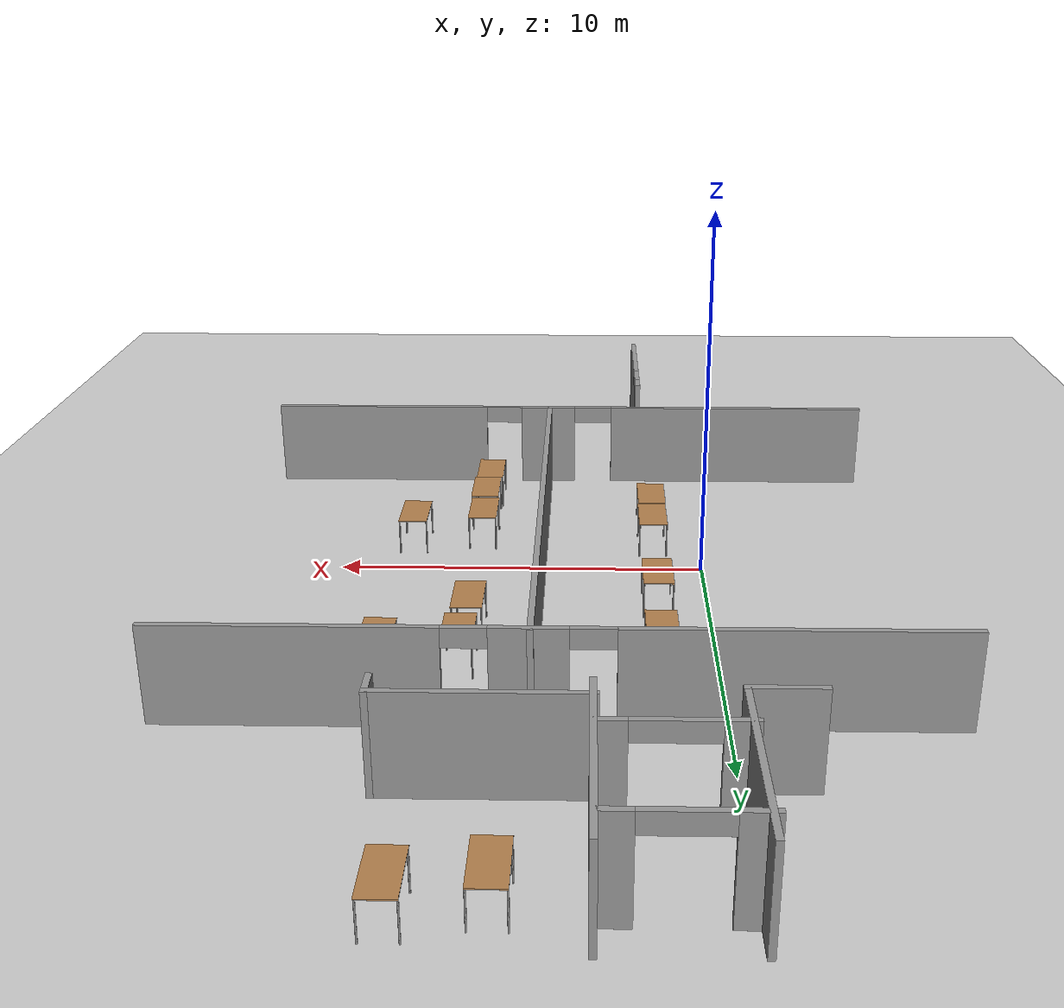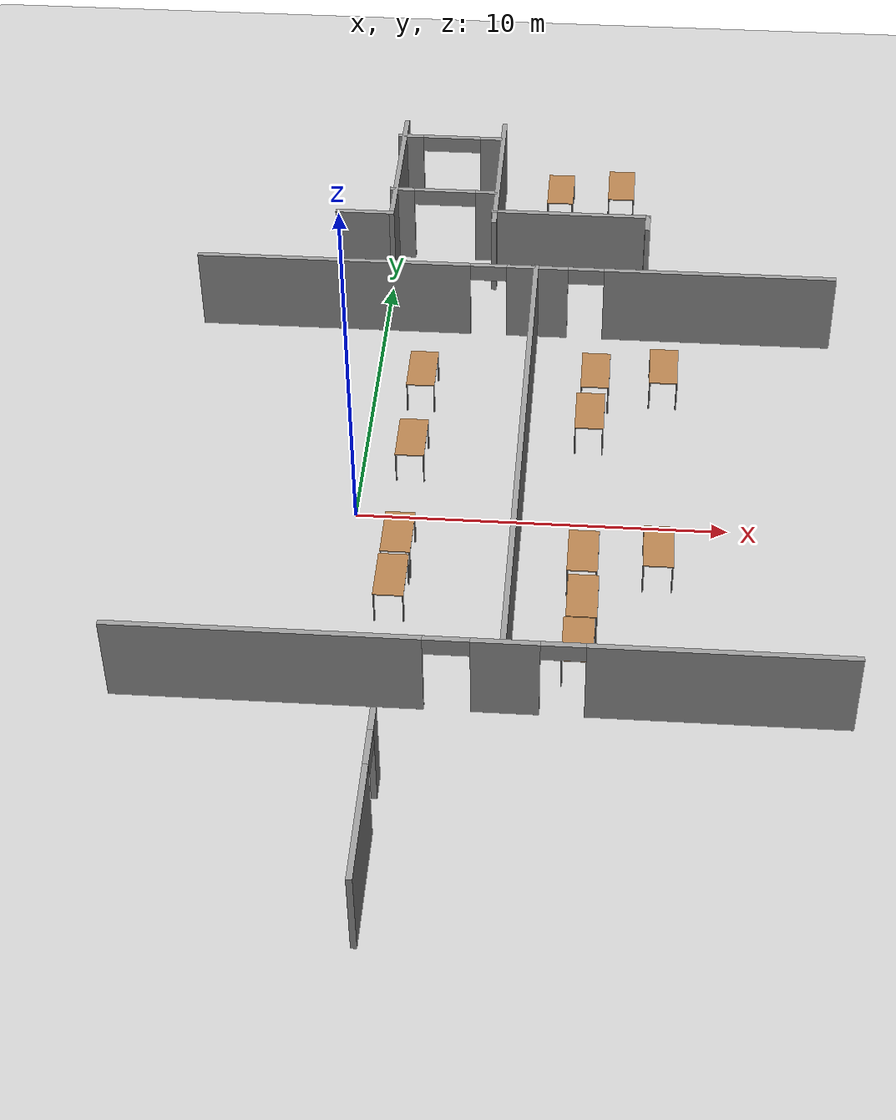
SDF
<sdf version="1.4">
 <world name="default">
  <model name="ground_plane">
   <static>1</static>
   <link name="link">
    <collision name="collision">
     <geometry><plane><normal>0 0 1</normal><size>100 100</size></plane></geometry>
    </collision>
    <visual name="visual">
     <cast_shadows>0</cast_shadows>
     <geometry><plane><normal>0 0 1</normal><size>100 100</size></plane></geometry>
     <material>
      <script><uri>file://media/materials/scripts/gazebo.material</uri><name>Gazebo/Grey</name></script>
     </material>
    </visual>
    <velocity_decay><linear>0</linear><angular>0</angular></velocity_decay>
   </link>
  </model>
  <model name="Shannon">
   <pose>-0.0406 0.68299 0 0 -0 0</pose>
   <link name="Wall_122">
    <pose>1.42965 13.9029 0 0 -0 0</pose>
    <visual name="Wall_122_Visual_0">
     <pose>-1.23095 0 1.25 0 -0 0</pose>
     <geometry><box><size>0.788098 0.15 2.5</size></box></geometry>
     <material>
      <script><uri>file://media/materials/scripts/gazebo.material</uri><name>Gazebo/Grey</name></script>
      <ambient>1 1 1 1</ambient>
     </material>
    </visual>
    <collision name="Wall_122_Collision_0">
     <geometry><box><size>0.788098 0.15 2.5</size></box></geometry>
     <pose>-1.23095 0 1.25 0 -0 0</pose>
    </collision>
    <visual name="Wall_122_Visual_1">
     <pose>1.28137 0 1.25 0 -0 0</pose>
     <geometry><box><size>0.687253 0.15 2.5</size></box></geometry>
     <material>
      <script><uri>file://media/materials/scripts/gazebo.material</uri><name>Gazebo/Grey</name></script>
      <ambient>1 1 1 1</ambient>
     </material>
    </visual>
    <collision name="Wall_122_Collision_1">
     <geometry><box><size>0.687253 0.15 2.5</size></box></geometry>
     <pose>1.28137 0 1.25 0 -0 0</pose>
    </collision>
    <visual name="Wall_122_Visual_2">
     <pose>0.050423 0 2.25 0 -0 0</pose>
     <geometry><box><size>1.77465 0.15 0.5</size></box></geometry>
     <material>
      <script><uri>file://media/materials/scripts/gazebo.material</uri><name>Gazebo/Grey</name></script>
      <ambient>1 1 1 1</ambient>
     </material>
    </visual>
    <collision name="Wall_122_Collision_2">
     <geometry><box><size>1.77465 0.15 0.5</size></box></geometry>
     <pose>0.050423 0 2.25 0 -0 0</pose>
    </collision>
    <velocity_decay><linear>0</linear><angular>0</angular></velocity_decay>
   </link>
   <link name="Wall_34">
    <pose>3.83527 7.41126 0 0 -0 0</pose>
    <visual name="Wall_34_Visual_0">
     <pose>-5.27347 0 1.25 0 -0 0</pose>
     <geometry><box><size>7.95306 0.15 2.5</size></box></geometry>
     <material>
      <script><uri>file://media/materials/scripts/gazebo.material</uri><name>Gazebo/Grey</name></script>
      <ambient>1 1 1 1</ambient>
     </material>
    </visual>
    <collision name="Wall_34_Collision_0">
     <geometry><box><size>7.95306 0.15 2.5</size></box></geometry>
     <pose>-5.27347 0 1.25 0 -0 0</pose>
    </collision>
    <visual name="Wall_34_Visual_1">
     <pose>0.653062 0 1.25 0 -0 0</pose>
     <geometry><box><size>1.78 0.15 2.5</size></box></geometry>
     <material>
      <script><uri>file://media/materials/scripts/gazebo.material</uri><name>Gazebo/Grey</name></script>
      <ambient>1 1 1 1</ambient>
     </material>
    </visual>
    <collision name="Wall_34_Collision_1">
     <geometry><box><size>1.78 0.15 2.5</size></box></geometry>
     <pose>0.653062 0 1.25 0 -0 0</pose>
    </collision>
    <visual name="Wall_34_Visual_2">
     <pose>5.91653 0 1.25 0 -0 0</pose>
     <geometry><box><size>6.66694 0.15 2.5</size></box></geometry>
     <material>
      <script><uri>file://media/materials/scripts/gazebo.material</uri><name>Gazebo/Grey</name></script>
      <ambient>1 1 1 1</ambient>
     </material>
    </visual>
    <collision name="Wall_34_Collision_2">
     <geometry><box><size>6.66694 0.15 2.5</size></box></geometry>
     <pose>5.91653 0 1.25 0 -0 0</pose>
    </collision>
    <visual name="Wall_34_Visual_3">
     <pose>-0.766938 0 2.25 0 -0 0</pose>
     <geometry><box><size>1.06 0.15 0.5</size></box></geometry>
     <material>
      <script><uri>file://media/materials/scripts/gazebo.material</uri><name>Gazebo/Grey</name></script>
      <ambient>1 1 1 1</ambient>
     </material>
    </visual>
    <collision name="Wall_34_Collision_3">
     <geometry><box><size>1.06 0.15 0.5</size></box></geometry>
     <pose>-0.766938 0 2.25 0 -0 0</pose>
    </collision>
    <visual name="Wall_34_Visual_4">
     <pose>2.06306 0 2.25 0 -0 0</pose>
     <geometry><box><size>1.04 0.15 0.5</size></box></geometry>
     <material>
      <script><uri>file://media/materials/scripts/gazebo.material</uri><name>Gazebo/Grey</name></script>
      <ambient>1 1 1 1</ambient>
     </material>
    </visual>
    <collision name="Wall_34_Collision_4">
     <geometry><box><size>1.04 0.15 0.5</size></box></geometry>
     <pose>2.06306 0 2.25 0 -0 0</pose>
    </collision>
    <velocity_decay><linear>0</linear><angular>0</angular></velocity_decay>
   </link>
   <link name="Wall_36">
    <pose>3.83527 -7.43874 0 0 -0 3.14159</pose>
    <visual name="Wall_36_Visual_0">
     <pose>-5.93674 0 1.25 0 -0 0</pose>
     <geometry><box><size>6.62653 0.15 2.5</size></box></geometry>
     <material>
      <script><uri>file://media/materials/scripts/gazebo.material</uri><name>Gazebo/Grey</name></script>
      <ambient>1 1 1 1</ambient>
     </material>
    </visual>
    <collision name="Wall_36_Collision_0">
     <geometry><box><size>6.62653 0.15 2.5</size></box></geometry>
     <pose>-5.93674 0 1.25 0 -0 0</pose>
    </collision>
    <visual name="Wall_36_Visual_1">
     <pose>-0.66258 0 1.25 0 -0 0</pose>
     <geometry><box><size>1.69618 0.15 2.5</size></box></geometry>
     <material>
      <script><uri>file://media/materials/scripts/gazebo.material</uri><name>Gazebo/Grey</name></script>
      <ambient>1 1 1 1</ambient>
     </material>
    </visual>
    <collision name="Wall_36_Collision_1">
     <geometry><box><size>1.69618 0.15 2.5</size></box></geometry>
     <pose>-0.66258 0 1.25 0 -0 0</pose>
    </collision>
    <visual name="Wall_36_Visual_2">
     <pose>5.30076 0 1.25 0 -0 0</pose>
     <geometry><box><size>7.89849 0.15 2.5</size></box></geometry>
     <material>
      <script><uri>file://media/materials/scripts/gazebo.material</uri><name>Gazebo/Grey</name></script>
      <ambient>1 1 1 1</ambient>
     </material>
    </visual>
    <collision name="Wall_36_Collision_2">
     <geometry><box><size>7.89849 0.15 2.5</size></box></geometry>
     <pose>5.30076 0 1.25 0 -0 0</pose>
    </collision>
    <visual name="Wall_36_Visual_3">
     <pose>-2.06707 0 2.25 0 -0 0</pose>
     <geometry><box><size>1.1128 0.15 0.5</size></box></geometry>
     <material>
      <script><uri>file://media/materials/scripts/gazebo.material</uri><name>Gazebo/Grey</name></script>
      <ambient>1 1 1 1</ambient>
     </material>
    </visual>
    <collision name="Wall_36_Collision_3">
     <geometry><box><size>1.1128 0.15 0.5</size></box></geometry>
     <pose>-2.06707 0 2.25 0 -0 0</pose>
    </collision>
    <visual name="Wall_36_Visual_4">
     <pose>0.76851 0 2.25 0 -0 0</pose>
     <geometry><box><size>1.166 0.15 0.5</size></box></geometry>
     <material>
      <script><uri>file://media/materials/scripts/gazebo.material</uri><name>Gazebo/Grey</name></script>
      <ambient>1 1 1 1</ambient>
     </material>
    </visual>
    <collision name="Wall_36_Collision_4">
     <geometry><box><size>1.166 0.15 0.5</size></box></geometry>
     <pose>0.76851 0 2.25 0 -0 0</pose>
    </collision>
    <velocity_decay><linear>0</linear><angular>0</angular></velocity_decay>
   </link>
   <link name="Wall_39">
    <collision name="Wall_39_Collision">
     <geometry><box><size>15 0.15 2.5</size></box></geometry>
     <pose>0 0 1.25 0 -0 0</pose>
    </collision>
    <visual name="Wall_39_Visual">
     <pose>0 0 1.25 0 -0 0</pose>
     <geometry><box><size>15 0.15 2.5</size></box></geometry>
     <material>
      <script><uri>file://media/materials/scripts/gazebo.material</uri><name>Gazebo/Grey</name></script>
      <ambient>1 1 1 1</ambient>
     </material>
    </visual>
    <pose>4.44451 0.03252 0 0 -0 -1.5708</pose>
    <velocity_decay><linear>0</linear><angular>0</angular></velocity_decay>
   </link>
   <link name="Wall_78">
    <collision name="Wall_78_Collision">
     <geometry><box><size>1.75 0.15 2.5</size></box></geometry>
     <pose>0 0 1.25 0 -0 0</pose>
    </collision>
    <visual name="Wall_78_Visual">
     <pose>0 0 1.25 0 -0 0</pose>
     <geometry><box><size>1.75 0.15 2.5</size></box></geometry>
     <material>
      <script><uri>file://media/materials/scripts/gazebo.material</uri><name>Gazebo/Grey</name></script>
      <ambient>1 1 1 1</ambient>
     </material>
    </visual>
    <pose>-0.792577 9.81684 0 0 -0 0</pose>
    <velocity_decay><linear>0</linear><angular>0</angular></velocity_decay>
   </link>
   <link name="Wall_80">
    <collision name="Wall_80_Collision">
     <geometry><box><size>5 0.15 2.5</size></box></geometry>
     <pose>0 0 1.25 0 -0 0</pose>
    </collision>
    <visual name="Wall_80_Visual">
     <pose>0 0 1.25 0 -0 0</pose>
     <geometry><box><size>5 0.15 2.5</size></box></geometry>
     <material>
      <script><uri>file://media/materials/scripts/gazebo.material</uri><name>Gazebo/Grey</name></script>
      <ambient>1 1 1 1</ambient>
     </material>
    </visual>
    <pose>0.007423 12.2418 0 0 -0 1.5708</pose>
    <velocity_decay><linear>0</linear><angular>0</angular></velocity_decay>
   </link>
   <link name="Wall_82">
    <pose>1.46091 11.0428 0 0 -0 0</pose>
    <visual name="Wall_82_Visual_0">
     <pose>-1.25629 0 1.25 0 -0 0</pose>
     <geometry><box><size>0.737414 0.15 2.5</size></box></geometry>
     <material>
      <script><uri>file://media/materials/scripts/gazebo.material</uri><name>Gazebo/Grey</name></script>
      <ambient>1 1 1 1</ambient>
     </material>
    </visual>
    <collision name="Wall_82_Collision_0">
     <geometry><box><size>0.737414 0.15 2.5</size></box></geometry>
     <pose>-1.25629 0 1.25 0 -0 0</pose>
    </collision>
    <visual name="Wall_82_Visual_1">
     <pose>1.28871 0 1.25 0 -0 0</pose>
     <geometry><box><size>0.672586 0.15 2.5</size></box></geometry>
     <material>
      <script><uri>file://media/materials/scripts/gazebo.material</uri><name>Gazebo/Grey</name></script>
      <ambient>1 1 1 1</ambient>
     </material>
    </visual>
    <collision name="Wall_82_Collision_1">
     <geometry><box><size>0.672586 0.15 2.5</size></box></geometry>
     <pose>1.28871 0 1.25 0 -0 0</pose>
    </collision>
    <visual name="Wall_82_Visual_2">
     <pose>0.032414 0 2.25 0 -0 0</pose>
     <geometry><box><size>1.84 0.15 0.5</size></box></geometry>
     <material>
      <script><uri>file://media/materials/scripts/gazebo.material</uri><name>Gazebo/Grey</name></script>
      <ambient>1 1 1 1</ambient>
     </material>
    </visual>
    <collision name="Wall_82_Collision_2">
     <geometry><box><size>1.84 0.15 0.5</size></box></geometry>
     <pose>0.032414 0 2.25 0 -0 0</pose>
    </collision>
    <velocity_decay><linear>0</linear><angular>0</angular></velocity_decay>
   </link>
   <link name="Wall_84">
    <collision name="Wall_84_Collision">
     <geometry><box><size>5.25 0.15 2.5</size></box></geometry>
     <pose>0 0 1.25 0 -0 0</pose>
    </collision>
    <visual name="Wall_84_Visual">
     <pose>0 0 1.25 0 -0 0</pose>
     <geometry><box><size>5.25 0.15 2.5</size></box></geometry>
     <material>
      <script><uri>file://media/materials/scripts/gazebo.material</uri><name>Gazebo/Grey</name></script>
      <ambient>1 1 1 1</ambient>
     </material>
    </visual>
    <pose>3.07981 12.1243 0 0 -0 -1.5708</pose>
    <velocity_decay><linear>0</linear><angular>0</angular></velocity_decay>
   </link>
   <link name="Wall_86">
    <collision name="Wall_86_Collision">
     <geometry><box><size>4.75 0.15 2.5</size></box></geometry>
     <pose>0 0 1.25 0 -0 0</pose>
    </collision>
    <visual name="Wall_86_Visual">
     <pose>0 0 1.25 0 -0 0</pose>
     <geometry><box><size>4.75 0.15 2.5</size></box></geometry>
     <material>
      <script><uri>file://media/materials/scripts/gazebo.material</uri><name>Gazebo/Grey</name></script>
      <ambient>1 1 1 1</ambient>
     </material>
    </visual>
    <pose>5.33354 10.0944 0 0 -0 0</pose>
    <velocity_decay><linear>0</linear><angular>0</angular></velocity_decay>
   </link>
   <link name="Wall_87">
    <collision name="Wall_87_Collision">
     <geometry><box><size>0.75 0.15 2.5</size></box></geometry>
     <pose>0 0 1.25 0 -0 0</pose>
    </collision>
    <visual name="Wall_87_Visual">
     <pose>0 0 1.25 0 -0 0</pose>
     <geometry><box><size>0.75 0.15 2.5</size></box></geometry>
     <material>
      <script><uri>file://media/materials/scripts/gazebo.material</uri><name>Gazebo/Grey</name></script>
      <ambient>1 1 1 1</ambient>
     </material>
    </visual>
    <pose>7.63354 9.79441 0 0 -0 -1.5708</pose>
    <velocity_decay><linear>0</linear><angular>0</angular></velocity_decay>
   </link>
   <link name="Wall_99">
    <pose>1.56463 -12.2176 0 0 -0 -1.5708</pose>
    <visual name="Wall_99_Visual_0">
     <pose>-2.15139 0 1.25 0 -0 0</pose>
     <geometry><box><size>0.697217 0.15 2.5</size></box></geometry>
     <material>
      <script><uri>file://media/materials/scripts/gazebo.material</uri><name>Gazebo/Grey</name></script>
      <ambient>1 1 1 1</ambient>
     </material>
    </visual>
    <collision name="Wall_99_Collision_0">
     <geometry><box><size>0.697217 0.15 2.5</size></box></geometry>
     <pose>-2.15139 0 1.25 0 -0 0</pose>
    </collision>
    <visual name="Wall_99_Visual_1">
     <pose>0.867048 0 1.25 0 -0 0</pose>
     <geometry><box><size>3.2659 0.15 2.5</size></box></geometry>
     <material>
      <script><uri>file://media/materials/scripts/gazebo.material</uri><name>Gazebo/Grey</name></script>
      <ambient>1 1 1 1</ambient>
     </material>
    </visual>
    <collision name="Wall_99_Collision_1">
     <geometry><box><size>3.2659 0.15 2.5</size></box></geometry>
     <pose>0.867048 0 1.25 0 -0 0</pose>
    </collision>
    <visual name="Wall_99_Visual_2">
     <pose>-1.28434 0 2.25 0 -0 0</pose>
     <geometry><box><size>1.03688 0.15 0.5</size></box></geometry>
     <material>
      <script><uri>file://media/materials/scripts/gazebo.material</uri><name>Gazebo/Grey</name></script>
      <ambient>1 1 1 1</ambient>
     </material>
    </visual>
    <collision name="Wall_99_Collision_2">
     <geometry><box><size>1.03688 0.15 0.5</size></box></geometry>
     <pose>-1.28434 0 2.25 0 -0 0</pose>
    </collision>
    <velocity_decay><linear>0</linear><angular>0</angular></velocity_decay>
   </link>
   <static>1</static>
  </model>
  <model name="table">
   <static>1</static>
   <link name="link">
    <collision name="surface">
     <pose>0 0 1 0 -0 0</pose>
     <geometry><box><size>1.5 0.8 0.03</size></box></geometry>
    </collision>
    <visual name="visual1">
     <pose>0 0 1 0 -0 0</pose>
     <geometry><box><size>1.5 0.8 0.03</size></box></geometry>
     <material>
      <script><uri>file://media/materials/scripts/gazebo.material</uri><name>Gazebo/Wood</name></script>
     </material>
    </visual>
    <collision name="front_left_leg">
     <pose>0.68 0.38 0.5 0 -0 0</pose>
     <geometry><cylinder><radius>0.02</radius><length>1</length></cylinder></geometry>
    </collision>
    <visual name="front_left_leg">
     <pose>0.68 0.38 0.5 0 -0 0</pose>
     <geometry><cylinder><radius>0.02</radius><length>1</length></cylinder></geometry>
     <material>
      <script><uri>file://media/materials/scripts/gazebo.material</uri><name>Gazebo/Grey</name></script>
     </material>
    </visual>
    <collision name="front_right_leg">
     <pose>0.68 -0.38 0.5 0 -0 0</pose>
     <geometry><cylinder><radius>0.02</radius><length>1</length></cylinder></geometry>
    </collision>
    <visual name="front_right_leg">
     <pose>0.68 -0.38 0.5 0 -0 0</pose>
     <geometry><cylinder><radius>0.02</radius><length>1</length></cylinder></geometry>
     <material>
      <script><uri>file://media/materials/scripts/gazebo.material</uri><name>Gazebo/Grey</name></script>
     </material>
    </visual>
    <collision name="back_right_leg">
     <pose>-0.68 -0.38 0.5 0 -0 0</pose>
     <geometry><cylinder><radius>0.02</radius><length>1</length></cylinder></geometry>
    </collision>
    <visual name="back_right_leg">
     <pose>-0.68 -0.38 0.5 0 -0 0</pose>
     <geometry><cylinder><radius>0.02</radius><length>1</length></cylinder></geometry>
     <material>
      <script><uri>file://media/materials/scripts/gazebo.material</uri><name>Gazebo/Grey</name></script>
     </material>
    </visual>
    <collision name="back_left_leg">
     <pose>-0.68 0.38 0.5 0 -0 0</pose>
     <geometry><cylinder><radius>0.02</radius><length>1</length></cylinder></geometry>
    </collision>
    <visual name="back_left_leg">
     <pose>-0.68 0.38 0.5 0 -0 0</pose>
     <geometry><cylinder><radius>0.02</radius><length>1</length></cylinder></geometry>
     <material>
      <script><uri>file://media/materials/scripts/gazebo.material</uri><name>Gazebo/Grey</name></script>
     </material>
    </visual>
    <velocity_decay><linear>0</linear><angular>0</angular></velocity_decay>
   </link>
   <pose>4.89203 14.1222 0 0 -0 1.57</pose>
  </model>
  <model name="table_clone">
   <static>1</static>
   <link name="link">
    <collision name="surface">
     <pose>0 0 1 0 -0 0</pose>
     <geometry><box><size>1.5 0.8 0.03</size></box></geometry>
    </collision>
    <visual name="visual1">
     <pose>0 0 1 0 -0 0</pose>
     <geometry><box><size>1.5 0.8 0.03</size></box></geometry>
     <material>
      <script><uri>file://media/materials/scripts/gazebo.material</uri><name>Gazebo/Wood</name></script>
     </material>
    </visual>
    <collision name="front_left_leg">
     <pose>0.68 0.38 0.5 0 -0 0</pose>
     <geometry><cylinder><radius>0.02</radius><length>1</length></cylinder></geometry>
    </collision>
    <visual name="front_left_leg">
     <pose>0.68 0.38 0.5 0 -0 0</pose>
     <geometry><cylinder><radius>0.02</radius><length>1</length></cylinder></geometry>
     <material>
      <script><uri>file://media/materials/scripts/gazebo.material</uri><name>Gazebo/Grey</name></script>
     </material>
    </visual>
    <collision name="front_right_leg">
     <pose>0.68 -0.38 0.5 0 -0 0</pose>
     <geometry><cylinder><radius>0.02</radius><length>1</length></cylinder></geometry>
    </collision>
    <visual name="front_right_leg">
     <pose>0.68 -0.38 0.5 0 -0 0</pose>
     <geometry><cylinder><radius>0.02</radius><length>1</length></cylinder></geometry>
     <material>
      <script><uri>file://media/materials/scripts/gazebo.material</uri><name>Gazebo/Grey</name></script>
     </material>
    </visual>
    <collision name="back_right_leg">
     <pose>-0.68 -0.38 0.5 0 -0 0</pose>
     <geometry><cylinder><radius>0.02</radius><length>1</length></cylinder></geometry>
    </collision>
    <visual name="back_right_leg">
     <pose>-0.68 -0.38 0.5 0 -0 0</pose>
     <geometry><cylinder><radius>0.02</radius><length>1</length></cylinder></geometry>
     <material>
      <script><uri>file://media/materials/scripts/gazebo.material</uri><name>Gazebo/Grey</name></script>
     </material>
    </visual>
    <collision name="back_left_leg">
     <pose>-0.68 0.38 0.5 0 -0 0</pose>
     <geometry><cylinder><radius>0.02</radius><length>1</length></cylinder></geometry>
    </collision>
    <visual name="back_left_leg">
     <pose>-0.68 0.38 0.5 0 -0 0</pose>
     <geometry><cylinder><radius>0.02</radius><length>1</length></cylinder></geometry>
     <material>
      <script><uri>file://media/materials/scripts/gazebo.material</uri><name>Gazebo/Grey</name></script>
     </material>
    </visual>
    <velocity_decay><linear>0</linear><angular>0</angular></velocity_decay>
   </link>
   <pose>6.77541 14.4343 0 0 -0 1.57</pose>
  </model>
  <model name="table_clone_clone_21_clone_2_clone_8">
   <static>1</static>
   <link name="link">
    <collision name="surface">
     <pose>0 0 1 0 -0 0</pose>
     <geometry><box><size>1.5 0.8 0.03</size></box></geometry>
    </collision>
    <visual name="visual1">
     <pose>0 0 1 0 -0 0</pose>
     <geometry><box><size>1.5 0.8 0.03</size></box></geometry>
     <material>
      <script><uri>file://media/materials/scripts/gazebo.material</uri><name>Gazebo/Wood</name></script>
     </material>
    </visual>
    <collision name="front_left_leg">
     <pose>0.68 0.38 0.5 0 -0 0</pose>
     <geometry><cylinder><radius>0.02</radius><length>1</length></cylinder></geometry>
    </collision>
    <visual name="front_left_leg">
     <pose>0.68 0.38 0.5 0 -0 0</pose>
     <geometry><cylinder><radius>0.02</radius><length>1</length></cylinder></geometry>
     <material>
      <script><uri>file://media/materials/scripts/gazebo.material</uri><name>Gazebo/Grey</name></script>
     </material>
    </visual>
    <collision name="front_right_leg">
     <pose>0.68 -0.38 0.5 0 -0 0</pose>
     <geometry><cylinder><radius>0.02</radius><length>1</length></cylinder></geometry>
    </collision>
    <visual name="front_right_leg">
     <pose>0.68 -0.38 0.5 0 -0 0</pose>
     <geometry><cylinder><radius>0.02</radius><length>1</length></cylinder></geometry>
     <material>
      <script><uri>file://media/materials/scripts/gazebo.material</uri><name>Gazebo/Grey</name></script>
     </material>
    </visual>
    <collision name="back_right_leg">
     <pose>-0.68 -0.38 0.5 0 -0 0</pose>
     <geometry><cylinder><radius>0.02</radius><length>1</length></cylinder></geometry>
    </collision>
    <visual name="back_right_leg">
     <pose>-0.68 -0.38 0.5 0 -0 0</pose>
     <geometry><cylinder><radius>0.02</radius><length>1</length></cylinder></geometry>
     <material>
      <script><uri>file://media/materials/scripts/gazebo.material</uri><name>Gazebo/Grey</name></script>
     </material>
    </visual>
    <collision name="back_left_leg">
     <pose>-0.68 0.38 0.5 0 -0 0</pose>
     <geometry><cylinder><radius>0.02</radius><length>1</length></cylinder></geometry>
    </collision>
    <visual name="back_left_leg">
     <pose>-0.68 0.38 0.5 0 -0 0</pose>
     <geometry><cylinder><radius>0.02</radius><length>1</length></cylinder></geometry>
     <material>
      <script><uri>file://media/materials/scripts/gazebo.material</uri><name>Gazebo/Grey</name></script>
     </material>
    </visual>
    <velocity_decay><linear>0</linear><angular>0</angular></velocity_decay>
   </link>
   <pose>1.32593 2.1516 0 0 -0 1.57</pose>
  </model>
  <model name="table_clone_clone_21_clone_2_clone_10">
   <static>1</static>
   <link name="link">
    <collision name="surface">
     <pose>0 0 1 0 -0 0</pose>
     <geometry><box><size>1.5 0.8 0.03</size></box></geometry>
    </collision>
    <visual name="visual1">
     <pose>0 0 1 0 -0 0</pose>
     <geometry><box><size>1.5 0.8 0.03</size></box></geometry>
     <material>
      <script><uri>file://media/materials/scripts/gazebo.material</uri><name>Gazebo/Wood</name></script>
     </material>
    </visual>
    <collision name="front_left_leg">
     <pose>0.68 0.38 0.5 0 -0 0</pose>
     <geometry><cylinder><radius>0.02</radius><length>1</length></cylinder></geometry>
    </collision>
    <visual name="front_left_leg">
     <pose>0.68 0.38 0.5 0 -0 0</pose>
     <geometry><cylinder><radius>0.02</radius><length>1</length></cylinder></geometry>
     <material>
      <script><uri>file://media/materials/scripts/gazebo.material</uri><name>Gazebo/Grey</name></script>
     </material>
    </visual>
    <collision name="front_right_leg">
     <pose>0.68 -0.38 0.5 0 -0 0</pose>
     <geometry><cylinder><radius>0.02</radius><length>1</length></cylinder></geometry>
    </collision>
    <visual name="front_right_leg">
     <pose>0.68 -0.38 0.5 0 -0 0</pose>
     <geometry><cylinder><radius>0.02</radius><length>1</length></cylinder></geometry>
     <material>
      <script><uri>file://media/materials/scripts/gazebo.material</uri><name>Gazebo/Grey</name></script>
     </material>
    </visual>
    <collision name="back_right_leg">
     <pose>-0.68 -0.38 0.5 0 -0 0</pose>
     <geometry><cylinder><radius>0.02</radius><length>1</length></cylinder></geometry>
    </collision>
    <visual name="back_right_leg">
     <pose>-0.68 -0.38 0.5 0 -0 0</pose>
     <geometry><cylinder><radius>0.02</radius><length>1</length></cylinder></geometry>
     <material>
      <script><uri>file://media/materials/scripts/gazebo.material</uri><name>Gazebo/Grey</name></script>
     </material>
    </visual>
    <collision name="back_left_leg">
     <pose>-0.68 0.38 0.5 0 -0 0</pose>
     <geometry><cylinder><radius>0.02</radius><length>1</length></cylinder></geometry>
    </collision>
    <visual name="back_left_leg">
     <pose>-0.68 0.38 0.5 0 -0 0</pose>
     <geometry><cylinder><radius>0.02</radius><length>1</length></cylinder></geometry>
     <material>
      <script><uri>file://media/materials/scripts/gazebo.material</uri><name>Gazebo/Grey</name></script>
     </material>
    </visual>
    <velocity_decay><linear>0</linear><angular>0</angular></velocity_decay>
   </link>
   <pose>1.35323 5.11247 0 0 -0 1.57</pose>
  </model>
  <model name="table_clone_clone_21_clone_2_clone_5_clone_3">
   <static>1</static>
   <link name="link">
    <collision name="surface">
     <pose>0 0 1 0 -0 0</pose>
     <geometry><box><size>1.5 0.8 0.03</size></box></geometry>
    </collision>
    <visual name="visual1">
     <pose>0 0 1 0 -0 0</pose>
     <geometry><box><size>1.5 0.8 0.03</size></box></geometry>
     <material>
      <script><uri>file://media/materials/scripts/gazebo.material</uri><name>Gazebo/Wood</name></script>
     </material>
    </visual>
    <collision name="front_left_leg">
     <pose>0.68 0.38 0.5 0 -0 0</pose>
     <geometry><cylinder><radius>0.02</radius><length>1</length></cylinder></geometry>
    </collision>
    <visual name="front_left_leg">
     <pose>0.68 0.38 0.5 0 -0 0</pose>
     <geometry><cylinder><radius>0.02</radius><length>1</length></cylinder></geometry>
     <material>
      <script><uri>file://media/materials/scripts/gazebo.material</uri><name>Gazebo/Grey</name></script>
     </material>
    </visual>
    <collision name="front_right_leg">
     <pose>0.68 -0.38 0.5 0 -0 0</pose>
     <geometry><cylinder><radius>0.02</radius><length>1</length></cylinder></geometry>
    </collision>
    <visual name="front_right_leg">
     <pose>0.68 -0.38 0.5 0 -0 0</pose>
     <geometry><cylinder><radius>0.02</radius><length>1</length></cylinder></geometry>
     <material>
      <script><uri>file://media/materials/scripts/gazebo.material</uri><name>Gazebo/Grey</name></script>
     </material>
    </visual>
    <collision name="back_right_leg">
     <pose>-0.68 -0.38 0.5 0 -0 0</pose>
     <geometry><cylinder><radius>0.02</radius><length>1</length></cylinder></geometry>
    </collision>
    <visual name="back_right_leg">
     <pose>-0.68 -0.38 0.5 0 -0 0</pose>
     <geometry><cylinder><radius>0.02</radius><length>1</length></cylinder></geometry>
     <material>
      <script><uri>file://media/materials/scripts/gazebo.material</uri><name>Gazebo/Grey</name></script>
     </material>
    </visual>
    <collision name="back_left_leg">
     <pose>-0.68 0.38 0.5 0 -0 0</pose>
     <geometry><cylinder><radius>0.02</radius><length>1</length></cylinder></geometry>
    </collision>
    <visual name="back_left_leg">
     <pose>-0.68 0.38 0.5 0 -0 0</pose>
     <geometry><cylinder><radius>0.02</radius><length>1</length></cylinder></geometry>
     <material>
      <script><uri>file://media/materials/scripts/gazebo.material</uri><name>Gazebo/Grey</name></script>
     </material>
    </visual>
    <velocity_decay><linear>0</linear><angular>0</angular></velocity_decay>
   </link>
   <pose>1.28489 -3.18854 0 0 -0 1.57</pose>
  </model>
  <model name="table_clone_clone_21_clone_2_clone_5_clone_4">
   <static>1</static>
   <link name="link">
    <collision name="surface">
     <pose>0 0 1 0 -0 0</pose>
     <geometry><box><size>1.5 0.8 0.03</size></box></geometry>
    </collision>
    <visual name="visual1">
     <pose>0 0 1 0 -0 0</pose>
     <geometry><box><size>1.5 0.8 0.03</size></box></geometry>
     <material>
      <script><uri>file://media/materials/scripts/gazebo.material</uri><name>Gazebo/Wood</name></script>
     </material>
    </visual>
    <collision name="front_left_leg">
     <pose>0.68 0.38 0.5 0 -0 0</pose>
     <geometry><cylinder><radius>0.02</radius><length>1</length></cylinder></geometry>
    </collision>
    <visual name="front_left_leg">
     <pose>0.68 0.38 0.5 0 -0 0</pose>
     <geometry><cylinder><radius>0.02</radius><length>1</length></cylinder></geometry>
     <material>
      <script><uri>file://media/materials/scripts/gazebo.material</uri><name>Gazebo/Grey</name></script>
     </material>
    </visual>
    <collision name="front_right_leg">
     <pose>0.68 -0.38 0.5 0 -0 0</pose>
     <geometry><cylinder><radius>0.02</radius><length>1</length></cylinder></geometry>
    </collision>
    <visual name="front_right_leg">
     <pose>0.68 -0.38 0.5 0 -0 0</pose>
     <geometry><cylinder><radius>0.02</radius><length>1</length></cylinder></geometry>
     <material>
      <script><uri>file://media/materials/scripts/gazebo.material</uri><name>Gazebo/Grey</name></script>
     </material>
    </visual>
    <collision name="back_right_leg">
     <pose>-0.68 -0.38 0.5 0 -0 0</pose>
     <geometry><cylinder><radius>0.02</radius><length>1</length></cylinder></geometry>
    </collision>
    <visual name="back_right_leg">
     <pose>-0.68 -0.38 0.5 0 -0 0</pose>
     <geometry><cylinder><radius>0.02</radius><length>1</length></cylinder></geometry>
     <material>
      <script><uri>file://media/materials/scripts/gazebo.material</uri><name>Gazebo/Grey</name></script>
     </material>
    </visual>
    <collision name="back_left_leg">
     <pose>-0.68 0.38 0.5 0 -0 0</pose>
     <geometry><cylinder><radius>0.02</radius><length>1</length></cylinder></geometry>
    </collision>
    <visual name="back_left_leg">
     <pose>-0.68 0.38 0.5 0 -0 0</pose>
     <geometry><cylinder><radius>0.02</radius><length>1</length></cylinder></geometry>
     <material>
      <script><uri>file://media/materials/scripts/gazebo.material</uri><name>Gazebo/Grey</name></script>
     </material>
    </visual>
    <velocity_decay><linear>0</linear><angular>0</angular></velocity_decay>
   </link>
   <pose>1.30679 -1.59868 0 0 -0 1.57</pose>
  </model>
  <model name="table_clone_clone_21_clone_2_clone_5_clone_5">
   <static>1</static>
   <link name="link">
    <collision name="surface">
     <pose>0 0 1 0 -0 0</pose>
     <geometry><box><size>1.5 0.8 0.03</size></box></geometry>
    </collision>
    <visual name="visual1">
     <pose>0 0 1 0 -0 0</pose>
     <geometry><box><size>1.5 0.8 0.03</size></box></geometry>
     <material>
      <script><uri>file://media/materials/scripts/gazebo.material</uri><name>Gazebo/Wood</name></script>
     </material>
    </visual>
    <collision name="front_left_leg">
     <pose>0.68 0.38 0.5 0 -0 0</pose>
     <geometry><cylinder><radius>0.02</radius><length>1</length></cylinder></geometry>
    </collision>
    <visual name="front_left_leg">
     <pose>0.68 0.38 0.5 0 -0 0</pose>
     <geometry><cylinder><radius>0.02</radius><length>1</length></cylinder></geometry>
     <material>
      <script><uri>file://media/materials/scripts/gazebo.material</uri><name>Gazebo/Grey</name></script>
     </material>
    </visual>
    <collision name="front_right_leg">
     <pose>0.68 -0.38 0.5 0 -0 0</pose>
     <geometry><cylinder><radius>0.02</radius><length>1</length></cylinder></geometry>
    </collision>
    <visual name="front_right_leg">
     <pose>0.68 -0.38 0.5 0 -0 0</pose>
     <geometry><cylinder><radius>0.02</radius><length>1</length></cylinder></geometry>
     <material>
      <script><uri>file://media/materials/scripts/gazebo.material</uri><name>Gazebo/Grey</name></script>
     </material>
    </visual>
    <collision name="back_right_leg">
     <pose>-0.68 -0.38 0.5 0 -0 0</pose>
     <geometry><cylinder><radius>0.02</radius><length>1</length></cylinder></geometry>
    </collision>
    <visual name="back_right_leg">
     <pose>-0.68 -0.38 0.5 0 -0 0</pose>
     <geometry><cylinder><radius>0.02</radius><length>1</length></cylinder></geometry>
     <material>
      <script><uri>file://media/materials/scripts/gazebo.material</uri><name>Gazebo/Grey</name></script>
     </material>
    </visual>
    <collision name="back_left_leg">
     <pose>-0.68 0.38 0.5 0 -0 0</pose>
     <geometry><cylinder><radius>0.02</radius><length>1</length></cylinder></geometry>
    </collision>
    <visual name="back_left_leg">
     <pose>-0.68 0.38 0.5 0 -0 0</pose>
     <geometry><cylinder><radius>0.02</radius><length>1</length></cylinder></geometry>
     <material>
      <script><uri>file://media/materials/scripts/gazebo.material</uri><name>Gazebo/Grey</name></script>
     </material>
    </visual>
    <velocity_decay><linear>0</linear><angular>0</angular></velocity_decay>
   </link>
   <pose>6.18495 -5.1523 0 0 -0 1.57</pose>
  </model>
  <model name="table_clone_clone_21_clone_2_clone_5_clone_6">
   <static>1</static>
   <link name="link">
    <collision name="surface">
     <pose>0 0 1 0 -0 0</pose>
     <geometry><box><size>1.5 0.8 0.03</size></box></geometry>
    </collision>
    <visual name="visual1">
     <pose>0 0 1 0 -0 0</pose>
     <geometry><box><size>1.5 0.8 0.03</size></box></geometry>
     <material>
      <script><uri>file://media/materials/scripts/gazebo.material</uri><name>Gazebo/Wood</name></script>
     </material>
    </visual>
    <collision name="front_left_leg">
     <pose>0.68 0.38 0.5 0 -0 0</pose>
     <geometry><cylinder><radius>0.02</radius><length>1</length></cylinder></geometry>
    </collision>
    <visual name="front_left_leg">
     <pose>0.68 0.38 0.5 0 -0 0</pose>
     <geometry><cylinder><radius>0.02</radius><length>1</length></cylinder></geometry>
     <material>
      <script><uri>file://media/materials/scripts/gazebo.material</uri><name>Gazebo/Grey</name></script>
     </material>
    </visual>
    <collision name="front_right_leg">
     <pose>0.68 -0.38 0.5 0 -0 0</pose>
     <geometry><cylinder><radius>0.02</radius><length>1</length></cylinder></geometry>
    </collision>
    <visual name="front_right_leg">
     <pose>0.68 -0.38 0.5 0 -0 0</pose>
     <geometry><cylinder><radius>0.02</radius><length>1</length></cylinder></geometry>
     <material>
      <script><uri>file://media/materials/scripts/gazebo.material</uri><name>Gazebo/Grey</name></script>
     </material>
    </visual>
    <collision name="back_right_leg">
     <pose>-0.68 -0.38 0.5 0 -0 0</pose>
     <geometry><cylinder><radius>0.02</radius><length>1</length></cylinder></geometry>
    </collision>
    <visual name="back_right_leg">
     <pose>-0.68 -0.38 0.5 0 -0 0</pose>
     <geometry><cylinder><radius>0.02</radius><length>1</length></cylinder></geometry>
     <material>
      <script><uri>file://media/materials/scripts/gazebo.material</uri><name>Gazebo/Grey</name></script>
     </material>
    </visual>
    <collision name="back_left_leg">
     <pose>-0.68 0.38 0.5 0 -0 0</pose>
     <geometry><cylinder><radius>0.02</radius><length>1</length></cylinder></geometry>
    </collision>
    <visual name="back_left_leg">
     <pose>-0.68 0.38 0.5 0 -0 0</pose>
     <geometry><cylinder><radius>0.02</radius><length>1</length></cylinder></geometry>
     <material>
      <script><uri>file://media/materials/scripts/gazebo.material</uri><name>Gazebo/Grey</name></script>
     </material>
    </visual>
    <velocity_decay><linear>0</linear><angular>0</angular></velocity_decay>
   </link>
   <pose>6.23538 -3.62698 0 0 -0 1.57</pose>
  </model>
  <model name="table_clone_clone_21_clone_2_clone_5_clone_7">
   <static>1</static>
   <link name="link">
    <collision name="surface">
     <pose>0 0 1 0 -0 0</pose>
     <geometry><box><size>1.5 0.8 0.03</size></box></geometry>
    </collision>
    <visual name="visual1">
     <pose>0 0 1 0 -0 0</pose>
     <geometry><box><size>1.5 0.8 0.03</size></box></geometry>
     <material>
      <script><uri>file://media/materials/scripts/gazebo.material</uri><name>Gazebo/Wood</name></script>
     </material>
    </visual>
    <collision name="front_left_leg">
     <pose>0.68 0.38 0.5 0 -0 0</pose>
     <geometry><cylinder><radius>0.02</radius><length>1</length></cylinder></geometry>
    </collision>
    <visual name="front_left_leg">
     <pose>0.68 0.38 0.5 0 -0 0</pose>
     <geometry><cylinder><radius>0.02</radius><length>1</length></cylinder></geometry>
     <material>
      <script><uri>file://media/materials/scripts/gazebo.material</uri><name>Gazebo/Grey</name></script>
     </material>
    </visual>
    <collision name="front_right_leg">
     <pose>0.68 -0.38 0.5 0 -0 0</pose>
     <geometry><cylinder><radius>0.02</radius><length>1</length></cylinder></geometry>
    </collision>
    <visual name="front_right_leg">
     <pose>0.68 -0.38 0.5 0 -0 0</pose>
     <geometry><cylinder><radius>0.02</radius><length>1</length></cylinder></geometry>
     <material>
      <script><uri>file://media/materials/scripts/gazebo.material</uri><name>Gazebo/Grey</name></script>
     </material>
    </visual>
    <collision name="back_right_leg">
     <pose>-0.68 -0.38 0.5 0 -0 0</pose>
     <geometry><cylinder><radius>0.02</radius><length>1</length></cylinder></geometry>
    </collision>
    <visual name="back_right_leg">
     <pose>-0.68 -0.38 0.5 0 -0 0</pose>
     <geometry><cylinder><radius>0.02</radius><length>1</length></cylinder></geometry>
     <material>
      <script><uri>file://media/materials/scripts/gazebo.material</uri><name>Gazebo/Grey</name></script>
     </material>
    </visual>
    <collision name="back_left_leg">
     <pose>-0.68 0.38 0.5 0 -0 0</pose>
     <geometry><cylinder><radius>0.02</radius><length>1</length></cylinder></geometry>
    </collision>
    <visual name="back_left_leg">
     <pose>-0.68 0.38 0.5 0 -0 0</pose>
     <geometry><cylinder><radius>0.02</radius><length>1</length></cylinder></geometry>
     <material>
      <script><uri>file://media/materials/scripts/gazebo.material</uri><name>Gazebo/Grey</name></script>
     </material>
    </visual>
    <velocity_decay><linear>0</linear><angular>0</angular></velocity_decay>
   </link>
   <pose>6.19038 -1.98982 0 0 -0 1.57</pose>
  </model>
  <model name="table_clone_clone_21_clone_2_clone_5_clone_9">
   <static>1</static>
   <link name="link">
    <collision name="surface">
     <pose>0 0 1 0 -0 0</pose>
     <geometry><box><size>1.5 0.8 0.03</size></box></geometry>
    </collision>
    <visual name="visual1">
     <pose>0 0 1 0 -0 0</pose>
     <geometry><box><size>1.5 0.8 0.03</size></box></geometry>
     <material>
      <script><uri>file://media/materials/scripts/gazebo.material</uri><name>Gazebo/Wood</name></script>
     </material>
    </visual>
    <collision name="front_left_leg">
     <pose>0.68 0.38 0.5 0 -0 0</pose>
     <geometry><cylinder><radius>0.02</radius><length>1</length></cylinder></geometry>
    </collision>
    <visual name="front_left_leg">
     <pose>0.68 0.38 0.5 0 -0 0</pose>
     <geometry><cylinder><radius>0.02</radius><length>1</length></cylinder></geometry>
     <material>
      <script><uri>file://media/materials/scripts/gazebo.material</uri><name>Gazebo/Grey</name></script>
     </material>
    </visual>
    <collision name="front_right_leg">
     <pose>0.68 -0.38 0.5 0 -0 0</pose>
     <geometry><cylinder><radius>0.02</radius><length>1</length></cylinder></geometry>
    </collision>
    <visual name="front_right_leg">
     <pose>0.68 -0.38 0.5 0 -0 0</pose>
     <geometry><cylinder><radius>0.02</radius><length>1</length></cylinder></geometry>
     <material>
      <script><uri>file://media/materials/scripts/gazebo.material</uri><name>Gazebo/Grey</name></script>
     </material>
    </visual>
    <collision name="back_right_leg">
     <pose>-0.68 -0.38 0.5 0 -0 0</pose>
     <geometry><cylinder><radius>0.02</radius><length>1</length></cylinder></geometry>
    </collision>
    <visual name="back_right_leg">
     <pose>-0.68 -0.38 0.5 0 -0 0</pose>
     <geometry><cylinder><radius>0.02</radius><length>1</length></cylinder></geometry>
     <material>
      <script><uri>file://media/materials/scripts/gazebo.material</uri><name>Gazebo/Grey</name></script>
     </material>
    </visual>
    <collision name="back_left_leg">
     <pose>-0.68 0.38 0.5 0 -0 0</pose>
     <geometry><cylinder><radius>0.02</radius><length>1</length></cylinder></geometry>
    </collision>
    <visual name="back_left_leg">
     <pose>-0.68 0.38 0.5 0 -0 0</pose>
     <geometry><cylinder><radius>0.02</radius><length>1</length></cylinder></geometry>
     <material>
      <script><uri>file://media/materials/scripts/gazebo.material</uri><name>Gazebo/Grey</name></script>
     </material>
    </visual>
    <velocity_decay><linear>0</linear><angular>0</angular></velocity_decay>
   </link>
   <pose>6.16889 3.57914 0 0 -0 1.57</pose>
  </model>
  <model name="table_clone_clone_21_clone_2_clone_5_clone_10">
   <static>1</static>
   <link name="link">
    <collision name="surface">
     <pose>0 0 1 0 -0 0</pose>
     <geometry><box><size>1.5 0.8 0.03</size></box></geometry>
    </collision>
    <visual name="visual1">
     <pose>0 0 1 0 -0 0</pose>
     <geometry><box><size>1.5 0.8 0.03</size></box></geometry>
     <material>
      <script><uri>file://media/materials/scripts/gazebo.material</uri><name>Gazebo/Wood</name></script>
     </material>
    </visual>
    <collision name="front_left_leg">
     <pose>0.68 0.38 0.5 0 -0 0</pose>
     <geometry><cylinder><radius>0.02</radius><length>1</length></cylinder></geometry>
    </collision>
    <visual name="front_left_leg">
     <pose>0.68 0.38 0.5 0 -0 0</pose>
     <geometry><cylinder><radius>0.02</radius><length>1</length></cylinder></geometry>
     <material>
      <script><uri>file://media/materials/scripts/gazebo.material</uri><name>Gazebo/Grey</name></script>
     </material>
    </visual>
    <collision name="front_right_leg">
     <pose>0.68 -0.38 0.5 0 -0 0</pose>
     <geometry><cylinder><radius>0.02</radius><length>1</length></cylinder></geometry>
    </collision>
    <visual name="front_right_leg">
     <pose>0.68 -0.38 0.5 0 -0 0</pose>
     <geometry><cylinder><radius>0.02</radius><length>1</length></cylinder></geometry>
     <material>
      <script><uri>file://media/materials/scripts/gazebo.material</uri><name>Gazebo/Grey</name></script>
     </material>
    </visual>
    <collision name="back_right_leg">
     <pose>-0.68 -0.38 0.5 0 -0 0</pose>
     <geometry><cylinder><radius>0.02</radius><length>1</length></cylinder></geometry>
    </collision>
    <visual name="back_right_leg">
     <pose>-0.68 -0.38 0.5 0 -0 0</pose>
     <geometry><cylinder><radius>0.02</radius><length>1</length></cylinder></geometry>
     <material>
      <script><uri>file://media/materials/scripts/gazebo.material</uri><name>Gazebo/Grey</name></script>
     </material>
    </visual>
    <collision name="back_left_leg">
     <pose>-0.68 0.38 0.5 0 -0 0</pose>
     <geometry><cylinder><radius>0.02</radius><length>1</length></cylinder></geometry>
    </collision>
    <visual name="back_left_leg">
     <pose>-0.68 0.38 0.5 0 -0 0</pose>
     <geometry><cylinder><radius>0.02</radius><length>1</length></cylinder></geometry>
     <material>
      <script><uri>file://media/materials/scripts/gazebo.material</uri><name>Gazebo/Grey</name></script>
     </material>
    </visual>
    <velocity_decay><linear>0</linear><angular>0</angular></velocity_decay>
   </link>
   <pose>6.26508 5.34408 0 0 -0 1.57</pose>
  </model>
  <model name="table_clone_clone_21_clone_2_clone_5_clone_12">
   <static>1</static>
   <link name="link">
    <collision name="surface">
     <pose>0 0 1 0 -0 0</pose>
     <geometry><box><size>1.5 0.8 0.03</size></box></geometry>
    </collision>
    <visual name="visual1">
     <pose>0 0 1 0 -0 0</pose>
     <geometry><box><size>1.5 0.8 0.03</size></box></geometry>
     <material>
      <script><uri>file://media/materials/scripts/gazebo.material</uri><name>Gazebo/Wood</name></script>
     </material>
    </visual>
    <collision name="front_left_leg">
     <pose>0.68 0.38 0.5 0 -0 0</pose>
     <geometry><cylinder><radius>0.02</radius><length>1</length></cylinder></geometry>
    </collision>
    <visual name="front_left_leg">
     <pose>0.68 0.38 0.5 0 -0 0</pose>
     <geometry><cylinder><radius>0.02</radius><length>1</length></cylinder></geometry>
     <material>
      <script><uri>file://media/materials/scripts/gazebo.material</uri><name>Gazebo/Grey</name></script>
     </material>
    </visual>
    <collision name="front_right_leg">
     <pose>0.68 -0.38 0.5 0 -0 0</pose>
     <geometry><cylinder><radius>0.02</radius><length>1</length></cylinder></geometry>
    </collision>
    <visual name="front_right_leg">
     <pose>0.68 -0.38 0.5 0 -0 0</pose>
     <geometry><cylinder><radius>0.02</radius><length>1</length></cylinder></geometry>
     <material>
      <script><uri>file://media/materials/scripts/gazebo.material</uri><name>Gazebo/Grey</name></script>
     </material>
    </visual>
    <collision name="back_right_leg">
     <pose>-0.68 -0.38 0.5 0 -0 0</pose>
     <geometry><cylinder><radius>0.02</radius><length>1</length></cylinder></geometry>
    </collision>
    <visual name="back_right_leg">
     <pose>-0.68 -0.38 0.5 0 -0 0</pose>
     <geometry><cylinder><radius>0.02</radius><length>1</length></cylinder></geometry>
     <material>
      <script><uri>file://media/materials/scripts/gazebo.material</uri><name>Gazebo/Grey</name></script>
     </material>
    </visual>
    <collision name="back_left_leg">
     <pose>-0.68 0.38 0.5 0 -0 0</pose>
     <geometry><cylinder><radius>0.02</radius><length>1</length></cylinder></geometry>
    </collision>
    <visual name="back_left_leg">
     <pose>-0.68 0.38 0.5 0 -0 0</pose>
     <geometry><cylinder><radius>0.02</radius><length>1</length></cylinder></geometry>
     <material>
      <script><uri>file://media/materials/scripts/gazebo.material</uri><name>Gazebo/Grey</name></script>
     </material>
    </visual>
    <velocity_decay><linear>0</linear><angular>0</angular></velocity_decay>
   </link>
   <pose>8.19353 5.64178 0 0 -0 1.57</pose>
  </model>
  <model name="table_clone_clone_21_clone_2_clone_5_clone_15">
   <static>1</static>
   <link name="link">
    <collision name="surface">
     <pose>0 0 1 0 -0 0</pose>
     <geometry><box><size>1.5 0.8 0.03</size></box></geometry>
    </collision>
    <visual name="visual1">
     <pose>0 0 1 0 -0 0</pose>
     <geometry><box><size>1.5 0.8 0.03</size></box></geometry>
     <material>
      <script><uri>file://media/materials/scripts/gazebo.material</uri><name>Gazebo/Wood</name></script>
     </material>
    </visual>
    <collision name="front_left_leg">
     <pose>0.68 0.38 0.5 0 -0 0</pose>
     <geometry><cylinder><radius>0.02</radius><length>1</length></cylinder></geometry>
    </collision>
    <visual name="front_left_leg">
     <pose>0.68 0.38 0.5 0 -0 0</pose>
     <geometry><cylinder><radius>0.02</radius><length>1</length></cylinder></geometry>
     <material>
      <script><uri>file://media/materials/scripts/gazebo.material</uri><name>Gazebo/Grey</name></script>
     </material>
    </visual>
    <collision name="front_right_leg">
     <pose>0.68 -0.38 0.5 0 -0 0</pose>
     <geometry><cylinder><radius>0.02</radius><length>1</length></cylinder></geometry>
    </collision>
    <visual name="front_right_leg">
     <pose>0.68 -0.38 0.5 0 -0 0</pose>
     <geometry><cylinder><radius>0.02</radius><length>1</length></cylinder></geometry>
     <material>
      <script><uri>file://media/materials/scripts/gazebo.material</uri><name>Gazebo/Grey</name></script>
     </material>
    </visual>
    <collision name="back_right_leg">
     <pose>-0.68 -0.38 0.5 0 -0 0</pose>
     <geometry><cylinder><radius>0.02</radius><length>1</length></cylinder></geometry>
    </collision>
    <visual name="back_right_leg">
     <pose>-0.68 -0.38 0.5 0 -0 0</pose>
     <geometry><cylinder><radius>0.02</radius><length>1</length></cylinder></geometry>
     <material>
      <script><uri>file://media/materials/scripts/gazebo.material</uri><name>Gazebo/Grey</name></script>
     </material>
    </visual>
    <collision name="back_left_leg">
     <pose>-0.68 0.38 0.5 0 -0 0</pose>
     <geometry><cylinder><radius>0.02</radius><length>1</length></cylinder></geometry>
    </collision>
    <visual name="back_left_leg">
     <pose>-0.68 0.38 0.5 0 -0 0</pose>
     <geometry><cylinder><radius>0.02</radius><length>1</length></cylinder></geometry>
     <material>
      <script><uri>file://media/materials/scripts/gazebo.material</uri><name>Gazebo/Grey</name></script>
     </material>
    </visual>
    <velocity_decay><linear>0</linear><angular>0</angular></velocity_decay>
   </link>
   <pose>8.14797 -1.70341 0 0 -0 1.57</pose>
  </model>
 </world>
</sdf>
